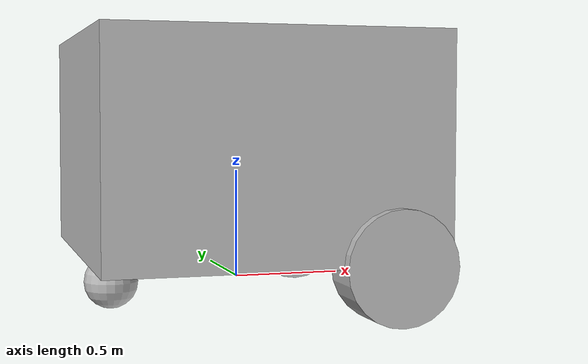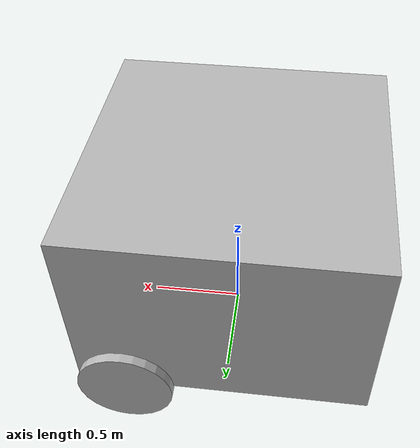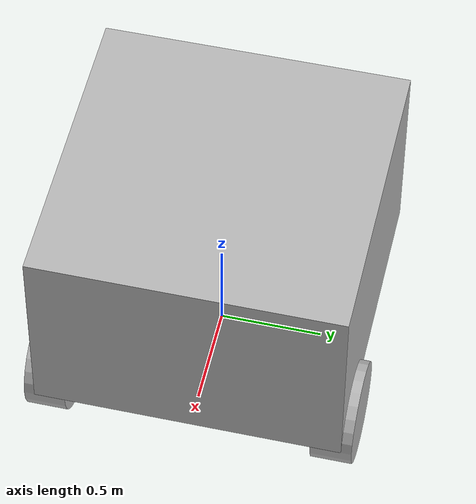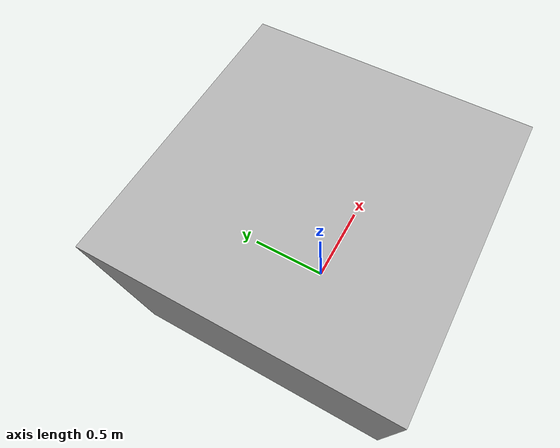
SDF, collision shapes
<?xml version="1.0" ?>

<sdf version="1.4">

  <model name="my_robot">

    <link name="chassis">
      <pose>0 0 0.625 0 0 0</pose>

      <collision name="collision">
        <geometry>
          <box>
            <size>1.5 1.5 1</size>
          </box>
        </geometry>
      </collision>

      <visual name="visual">
        <geometry>
          <box>
            <size>1.5 1.5 1</size>
          </box>
        </geometry>
      </visual>

      <collision name="caster_collision">
        <pose>-0.6 0 -0.625 0 0 0</pose>

        <geometry>
          <sphere>
            <radius>.125</radius>
          </sphere>
        </geometry>

        <surface>
          <friction>
            <ode>
              <mu>1</mu>
              <mu2>1</mu2>
              <slip1>1.0</slip1>
              <slip2>1.0</slip2>
            </ode>
          </friction>
        </surface>
      </collision>

      <visual name="caster_visual">
        <pose>-0.6 0 -0.625 0 0 0</pose>
        <geometry>
          <sphere>
            <radius>.125</radius>
          </sphere>
        </geometry>
      </visual>
    </link>

    <link name="left_wheel">
      <pose>0.5 0.7 0.125 0 1.5707 1.5707</pose>

      <collision name="collision">
        <geometry>
          <cylinder>
            <radius>.25</radius>
            <length>.2</length>
          </cylinder>
        </geometry>
      </collision>

      <visual name="visual">
        <geometry>
          <cylinder>
            <radius>.25</radius>
            <length>.2</length>
          </cylinder>
        </geometry>
      </visual>
    </link>

    <link name="right_wheel">
      <pose>0.5 -0.7 0.125 0 1.5707 1.5707</pose>

      <collision name="collision">
        <geometry>
          <cylinder>
            <radius>.25</radius>
            <length>.2</length>
          </cylinder>
        </geometry>
      </collision>

      <visual name="visual">
        <geometry>
          <cylinder>
            <radius>.25</radius>
            <length>.2</length>
          </cylinder>
        </geometry>
      </visual>
    </link>

    <joint type="revolute" name="left_wheel_hinge">
      <pose>0 0 -0.03 0 0 0</pose>
      <child>left_wheel</child>
      <parent>chassis</parent>
      <axis>
        <xyz>0 1 0</xyz>
      </axis>
    </joint>

    <joint type="revolute" name="right_wheel_hinge">
      <pose>0 0 0.03 0 0 0</pose>
      <child>right_wheel</child>
      <parent>chassis</parent>
      <axis>
        <xyz>0 1 0</xyz>
      </axis>
    </joint>

    <include>
      <uri>model://hokuyo</uri>
      <pose>0.2 0 0.2 0 0 0</pose>
    </include>

    <joint name="hokuyo_joint" type="revolute">
      <child>hokuyo::link</child>
      <parent>chassis</parent>
      <axis>
        <xyz>0 0 1</xyz>
        <limit>
          <upper>0</upper>
          <lower>0</lower>
        </limit>
      </axis>
    </joint>

    <plugin filename="libmy_plugin_with_gazebo.so" name="my_plugin_with_gazebo">
      <left_wheel_hinge>left_wheel_hinge</left_wheel_hinge>
      <right_wheel_hinge>right_wheel_hinge</right_wheel_hinge>
      <gain>0.1</gain>
      <ray_sensor>laser</ray_sensor>
    </plugin>

  </model>
</sdf>

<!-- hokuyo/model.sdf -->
<sdf version="1.5">
  <model name="hokuyo">
    <pose>0 0 0.035 0 0 0</pose>
    <link name="link">
      <inertial>
        <mass>0.1</mass>
      </inertial>
      <visual name="visual">
        <geometry>
          <mesh>
            <uri>model://../model_source/models/hokuyo/meshes/hokuyo.dae</uri>
          </mesh>
        </geometry>
      </visual>
      <collision name="collision-base">
        <pose>0 0 -0.0145 0 0 0</pose>
        <geometry>
          <box>
            <size>0.05 0.05 0.041</size>
          </box>
        </geometry>
      </collision>
      <collision name="collision-top">
        <pose>0 0 0.0205 0 0 0</pose>
        <geometry>
          <cylinder>
            <radius>0.021</radius>
            <length>0.029</length>
          </cylinder>
        </geometry>
      </collision>
      <sensor name="laser" type="ray">
        <pose>0.01 0 0.0175 0 -0 0</pose>
        <ray>
          <scan>
            <horizontal>
              <samples>640</samples>
              <resolution>1</resolution>
              <min_angle>-2.26889</min_angle>
              <max_angle>2.268899</max_angle>
            </horizontal>
          </scan>
          <range>
            <min>0.08</min>
            <max>10</max>
            <resolution>0.01</resolution>
          </range>
        </ray>
        <plugin name="laser" filename="libRayPlugin.so" />
        <always_on>1</always_on>
        <update_rate>30</update_rate>
        <visualize>true</visualize>
      </sensor>
    </link>
  </model>
</sdf>
